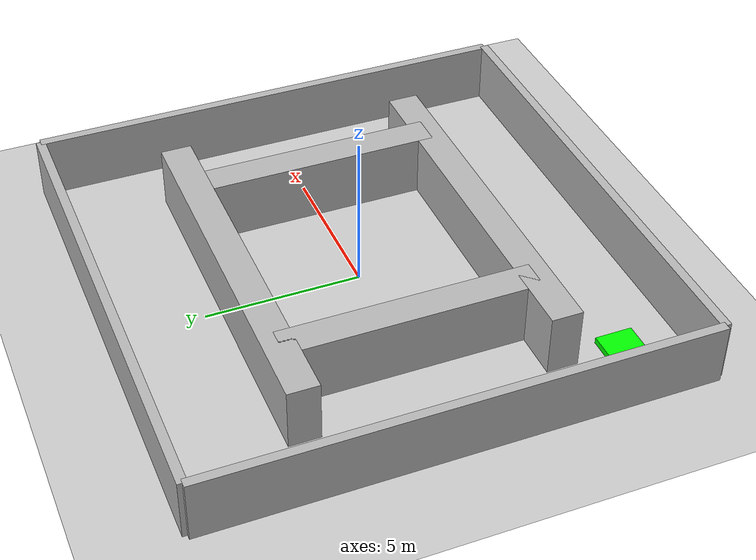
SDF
<?xml version="1.0" ?>
<sdf version="1.6">
  <world name="my_advanced_world">

    <!-- Physics -->
    <physics type="ode">
      <gravity>0 0 -9.8</gravity>
    </physics>

    <!-- Sun -->
    <include>
      <uri>model://sun</uri>
    </include>

    <!-- Ground -->
    <include>
      <uri>model://ground_plane</uri>
    </include>

    <!-- ================= OUTER BOUNDARY (16m x 16m) ================= -->

    <!-- North Wall -->
    <model name="north_wall">
      <static>true</static>
      <pose>0 8 1 0 0 0</pose>
      <link name="link">
        <collision name="collision">
          <geometry><box><size>16 0.3 2</size></box></geometry>
        </collision>
        <visual name="visual">
          <geometry><box><size>16 0.3 2</size></box></geometry>
        </visual>
      </link>
    </model>

    <!-- South Wall -->
    <model name="south_wall">
      <static>true</static>
      <pose>0 -8 1 0 0 0</pose>
      <link name="link">
        <collision name="collision">
          <geometry><box><size>16 0.3 2</size></box></geometry>
        </collision>
        <visual name="visual">
          <geometry><box><size>16 0.3 2</size></box></geometry>
        </visual>
      </link>
    </model>

    <!-- East Wall -->
    <model name="east_wall">
      <static>true</static>
      <pose>8 0 1 0 0 0</pose>
      <link name="link">
        <collision name="collision">
          <geometry><box><size>0.3 16 2</size></box></geometry>
        </collision>
        <visual name="visual">
          <geometry><box><size>0.3 16 2</size></box></geometry>
        </visual>
      </link>
    </model>

    <!-- West Wall -->
    <model name="west_wall">
      <static>true</static>
      <pose>-8 0 1 0 0 0</pose>
      <link name="link">
        <collision name="collision">
          <geometry><box><size>0.3 16 2</size></box></geometry>
        </collision>
        <visual name="visual">
          <geometry><box><size>0.3 16 2</size></box></geometry>
        </visual>
      </link>
    </model>

    <!-- ================= SHELF ROWS ================= -->

    <!-- Shelf Row 1 -->
    <model name="shelf_row_1">
      <static>true</static>
      <pose>0 4 1 0 0 0</pose>
      <link name="link">
        <collision name="collision">
          <geometry><box><size>12 1 2</size></box></geometry>
        </collision>
        <visual name="visual">
          <geometry><box><size>12 1 2</size></box></geometry>
        </visual>
      </link>
    </model>

    <!-- Shelf Row 2 -->
    <model name="shelf_row_2">
      <static>true</static>
      <pose>0 -4 1 0 0 0</pose>
      <link name="link">
        <collision name="collision">
          <geometry><box><size>12 1 2</size></box></geometry>
        </collision>
        <visual name="visual">
          <geometry><box><size>12 1 2</size></box></geometry>
        </visual>
      </link>
    </model>

    <!-- ================= CROSS DIVIDERS ================= -->

    <model name="divider_left">
      <static>true</static>
      <pose>-4 0 1 0 0 0</pose>
      <link name="link">
        <collision name="collision">
          <geometry><box><size>1 8 2</size></box></geometry>
        </collision>
        <visual name="visual">
          <geometry><box><size>1 8 2</size></box></geometry>
        </visual>
      </link>
    </model>

    <model name="divider_right">
      <static>true</static>
      <pose>4 0 1 0 0 0</pose>
      <link name="link">
        <collision name="collision">
          <geometry><box><size>1 8 2</size></box></geometry>
        </collision>
        <visual name="visual">
          <geometry><box><size>1 8 2</size></box></geometry>
        </visual>
      </link>
    </model>

    <!-- ================= DOCKING STATION ================= -->

    <model name="charging_dock">
      <static>true</static>
      <pose>-6 -6 0.1 0 0 0</pose>
      <link name="link">
        <collision name="collision">
          <geometry><box><size>1.2 1.2 0.2</size></box></geometry>
        </collision>
        <visual name="visual">
          <geometry><box><size>1.2 1.2 0.2</size></box></geometry>
          <material>
            <ambient>0 1 0 1</ambient>
          </material>
        </visual>
      </link>
    </model>

  </world>
</sdf>
